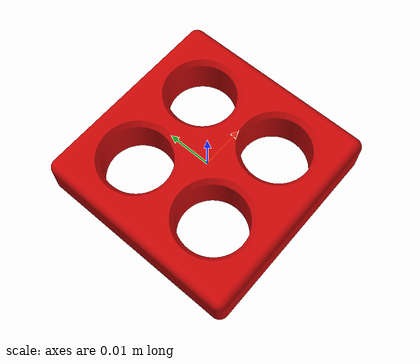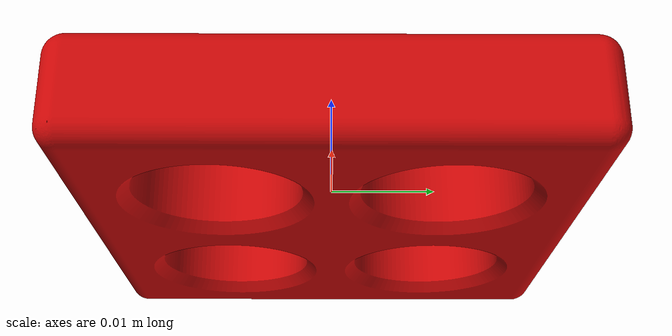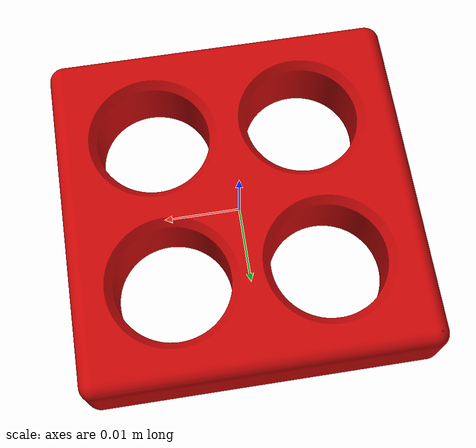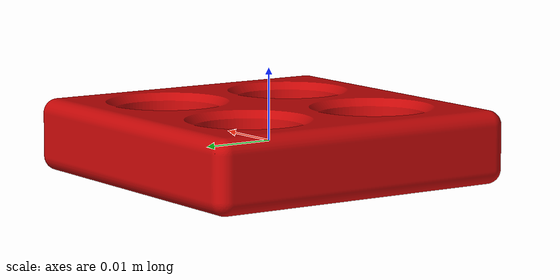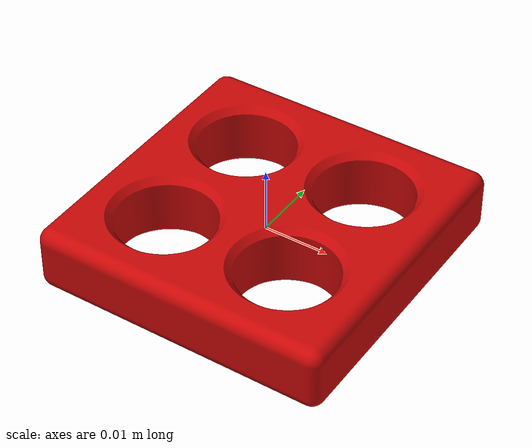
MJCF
<mujoco model="toy_five_insertion_four">
  <default>
    <default class="toy_four_visual">
      <geom group="2" type="mesh" contype="0" conaffinity="0"/>
    </default>
    <default class="toy_four_collision">
      <geom group="3" type="mesh"/>
    </default>
  </default>
  <asset>
    <material name="material_0" specular="0.5" shininess="0.5" rgba="0.791298 0.02732062 0.02732062 1"/>
    <mesh file="toy_five_insertion_four.obj"/>
    <mesh file="toy_five_insertion_four_collision_0.obj"/>
    <mesh file="toy_five_insertion_four_collision_1.obj"/>
    <mesh file="toy_five_insertion_four_collision_2.obj"/>
    <mesh file="toy_five_insertion_four_collision_3.obj"/>
    <mesh file="toy_five_insertion_four_collision_4.obj"/>
    <mesh file="toy_five_insertion_four_collision_5.obj"/>
    <mesh file="toy_five_insertion_four_collision_6.obj"/>
    <mesh file="toy_five_insertion_four_collision_7.obj"/>
    <mesh file="toy_five_insertion_four_collision_8.obj"/>
    <mesh file="toy_five_insertion_four_collision_9.obj"/>
    <mesh file="toy_five_insertion_four_collision_10.obj"/>
    <mesh file="toy_five_insertion_four_collision_11.obj"/>
    <mesh file="toy_five_insertion_four_collision_12.obj"/>
    <mesh file="toy_five_insertion_four_collision_13.obj"/>
    <mesh file="toy_five_insertion_four_collision_14.obj"/>
    <mesh file="toy_five_insertion_four_collision_15.obj"/>
    <mesh file="toy_five_insertion_four_collision_16.obj"/>
    <mesh file="toy_five_insertion_four_collision_17.obj"/>
    <mesh file="toy_five_insertion_four_collision_18.obj"/>
    <mesh file="toy_five_insertion_four_collision_19.obj"/>
    <mesh file="toy_five_insertion_four_collision_20.obj"/>
    <mesh file="toy_five_insertion_four_collision_21.obj"/>
    <mesh file="toy_five_insertion_four_collision_22.obj"/>
    <mesh file="toy_five_insertion_four_collision_23.obj"/>
    <mesh file="toy_five_insertion_four_collision_24.obj"/>
    <mesh file="toy_five_insertion_four_collision_25.obj"/>
    <mesh file="toy_five_insertion_four_collision_26.obj"/>
    <mesh file="toy_five_insertion_four_collision_27.obj"/>
    <mesh file="toy_five_insertion_four_collision_28.obj"/>
    <mesh file="toy_five_insertion_four_collision_29.obj"/>
    <mesh file="toy_five_insertion_four_collision_30.obj"/>
    <mesh file="toy_five_insertion_four_collision_31.obj"/>
    <mesh file="toy_five_insertion_four_collision_32.obj"/>
    <mesh file="toy_five_insertion_four_collision_33.obj"/>
    <mesh file="toy_five_insertion_four_collision_34.obj"/>
    <mesh file="toy_five_insertion_four_collision_35.obj"/>
    <mesh file="toy_five_insertion_four_collision_36.obj"/>
    <mesh file="toy_five_insertion_four_collision_37.obj"/>
    <mesh file="toy_five_insertion_four_collision_38.obj"/>
    <mesh file="toy_five_insertion_four_collision_39.obj"/>
    <mesh file="toy_five_insertion_four_collision_40.obj"/>
    <mesh file="toy_five_insertion_four_collision_41.obj"/>
    <mesh file="toy_five_insertion_four_collision_42.obj"/>
    <mesh file="toy_five_insertion_four_collision_43.obj"/>
    <mesh file="toy_five_insertion_four_collision_44.obj"/>
    <mesh file="toy_five_insertion_four_collision_45.obj"/>
    <mesh file="toy_five_insertion_four_collision_46.obj"/>
    <mesh file="toy_five_insertion_four_collision_47.obj"/>
    <mesh file="toy_five_insertion_four_collision_48.obj"/>
    <mesh file="toy_five_insertion_four_collision_49.obj"/>
    <mesh file="toy_five_insertion_four_collision_50.obj"/>
    <mesh file="toy_five_insertion_four_collision_51.obj"/>
    <mesh file="toy_five_insertion_four_collision_52.obj"/>
    <mesh file="toy_five_insertion_four_collision_53.obj"/>
    <mesh file="toy_five_insertion_four_collision_54.obj"/>
    <mesh file="toy_five_insertion_four_collision_55.obj"/>
    <mesh file="toy_five_insertion_four_collision_56.obj"/>
    <mesh file="toy_five_insertion_four_collision_57.obj"/>
    <mesh file="toy_five_insertion_four_collision_58.obj"/>
    <mesh file="toy_five_insertion_four_collision_59.obj"/>
    <mesh file="toy_five_insertion_four_collision_60.obj"/>
    <mesh file="toy_five_insertion_four_collision_61.obj"/>
    <mesh file="toy_five_insertion_four_collision_62.obj"/>
    <mesh file="toy_five_insertion_four_collision_63.obj"/>
    <mesh file="toy_five_insertion_four_collision_64.obj"/>
    <mesh file="toy_five_insertion_four_collision_65.obj"/>
    <mesh file="toy_five_insertion_four_collision_66.obj"/>
    <mesh file="toy_five_insertion_four_collision_67.obj"/>
  </asset>
  <worldbody>
    <body name="toy_five_insertion_four">
      <freejoint/>
      <geom material="material_0" mesh="toy_five_insertion_four" class="toy_four_visual"/>
      <geom mesh="toy_five_insertion_four_collision_0" rgba="0.680867220347491 0.045625420193492694 0.6950127350755976 1" class="toy_four_collision"/>
      <geom mesh="toy_five_insertion_four_collision_1" rgba="0.8875533451947434 0.9283782565542974 0.6094797530822809 1" class="toy_four_collision"/>
      <geom mesh="toy_five_insertion_four_collision_2" rgba="0.7131332182909207 0.2323243541270611 0.35706297387464825 1" class="toy_four_collision"/>
      <geom mesh="toy_five_insertion_four_collision_3" rgba="0.31569621194322184 0.13854429591468853 0.8236208833771661 1" class="toy_four_collision"/>
      <geom mesh="toy_five_insertion_four_collision_4" rgba="0.5242423837737973 0.8562989266838945 0.49197379873839553 1" class="toy_four_collision"/>
      <geom mesh="toy_five_insertion_four_collision_5" rgba="0.12715574732519574 0.2932102138210617 0.5483674639694682 1" class="toy_four_collision"/>
      <geom mesh="toy_five_insertion_four_collision_6" rgba="0.514561888583507 0.350130499524522 0.9290086937374602 1" class="toy_four_collision"/>
      <geom mesh="toy_five_insertion_four_collision_7" rgba="0.8027687733142266 0.306760687738898 0.5764904408091734 1" class="toy_four_collision"/>
      <geom mesh="toy_five_insertion_four_collision_8" rgba="0.29304103634807543 0.7071153011323568 0.4125266485384612 1" class="toy_four_collision"/>
      <geom mesh="toy_five_insertion_four_collision_9" rgba="0.4303004158661361 0.8913137885294329 0.40708166179267435 1" class="toy_four_collision"/>
      <geom mesh="toy_five_insertion_four_collision_10" rgba="0.6932801080073803 0.5346032486458051 0.07988276134879846 1" class="toy_four_collision"/>
      <geom mesh="toy_five_insertion_four_collision_11" rgba="0.8511186926625357 0.8219970264246326 0.9797862001627388 1" class="toy_four_collision"/>
      <geom mesh="toy_five_insertion_four_collision_12" rgba="0.8685266432861168 0.09677809564623097 0.2124972405870338 1" class="toy_four_collision"/>
      <geom mesh="toy_five_insertion_four_collision_13" rgba="0.6423797824474529 0.19492078585525696 0.3806747672608487 1" class="toy_four_collision"/>
      <geom mesh="toy_five_insertion_four_collision_14" rgba="0.3100177353748421 0.6624223144300199 0.773761791207812 1" class="toy_four_collision"/>
      <geom mesh="toy_five_insertion_four_collision_15" rgba="0.29463861645620326 0.6589149960241673 0.21698428534444092 1" class="toy_four_collision"/>
      <geom mesh="toy_five_insertion_four_collision_16" rgba="0.20307563311029053 0.8633518237830308 0.775707467734623 1" class="toy_four_collision"/>
      <geom mesh="toy_five_insertion_four_collision_17" rgba="0.9450387095051189 0.3907202148142994 0.2581295246380072 1" class="toy_four_collision"/>
      <geom mesh="toy_five_insertion_four_collision_18" rgba="0.7430885610882769 0.2669586193136322 0.5557782613467684 1" class="toy_four_collision"/>
      <geom mesh="toy_five_insertion_four_collision_19" rgba="0.6794492118926451 0.7844884794209549 0.932996127075433 1" class="toy_four_collision"/>
      <geom mesh="toy_five_insertion_four_collision_20" rgba="0.24417959457542304 0.8637087426469096 0.5623539732102772 1" class="toy_four_collision"/>
      <geom mesh="toy_five_insertion_four_collision_21" rgba="0.9803078208573962 0.24837727219726757 0.7674362285098368 1" class="toy_four_collision"/>
      <geom mesh="toy_five_insertion_four_collision_22" rgba="0.598588151543056 0.09405174260489768 0.4036866280011824 1" class="toy_four_collision"/>
      <geom mesh="toy_five_insertion_four_collision_23" rgba="0.0033916809358151 0.5841620557256613 0.4292486238206059 1" class="toy_four_collision"/>
      <geom mesh="toy_five_insertion_four_collision_24" rgba="0.25468817237777996 0.6761568215418889 0.3887843022281743 1" class="toy_four_collision"/>
      <geom mesh="toy_five_insertion_four_collision_25" rgba="0.6276738194116782 0.8764219172372969 0.9644744963098077 1" class="toy_four_collision"/>
      <geom mesh="toy_five_insertion_four_collision_26" rgba="0.56030971454721 0.017935064458962535 0.822020430779787 1" class="toy_four_collision"/>
      <geom mesh="toy_five_insertion_four_collision_27" rgba="0.9659347833606482 0.9710476626378928 0.053859961407730195 1" class="toy_four_collision"/>
      <geom mesh="toy_five_insertion_four_collision_28" rgba="0.15860402206793744 0.4436655695820818 0.9073649695354253 1" class="toy_four_collision"/>
      <geom mesh="toy_five_insertion_four_collision_29" rgba="0.27192143854285966 0.5571417338261873 0.9807318905640755 1" class="toy_four_collision"/>
      <geom mesh="toy_five_insertion_four_collision_30" rgba="0.14875081291825432 0.945301071098183 0.18254102506210101 1" class="toy_four_collision"/>
      <geom mesh="toy_five_insertion_four_collision_31" rgba="0.03731091939084763 0.5194349229905815 0.6834479604924018 1" class="toy_four_collision"/>
      <geom mesh="toy_five_insertion_four_collision_32" rgba="0.8703869667484838 0.12153044670215829 0.09386227069754005 1" class="toy_four_collision"/>
      <geom mesh="toy_five_insertion_four_collision_33" rgba="0.2047986985957908 0.9263999335657999 0.572503572734969 1" class="toy_four_collision"/>
      <geom mesh="toy_five_insertion_four_collision_34" rgba="0.5691565593992749 0.9965045020856975 0.7029942415055946 1" class="toy_four_collision"/>
      <geom mesh="toy_five_insertion_four_collision_35" rgba="0.9912117770781982 0.9515507564296913 0.9133876871731916 1" class="toy_four_collision"/>
      <geom mesh="toy_five_insertion_four_collision_36" rgba="0.6552682058254448 0.8477764445094379 0.0373323024051031 1" class="toy_four_collision"/>
      <geom mesh="toy_five_insertion_four_collision_37" rgba="0.9219208323352711 0.8344872878165761 0.41330256320293957 1" class="toy_four_collision"/>
      <geom mesh="toy_five_insertion_four_collision_38" rgba="0.7922019725299722 0.8913282959215779 0.8584151822953204 1" class="toy_four_collision"/>
      <geom mesh="toy_five_insertion_four_collision_39" rgba="0.1695914209185666 0.13421917752703638 0.8112576188423712 1" class="toy_four_collision"/>
      <geom mesh="toy_five_insertion_four_collision_40" rgba="0.2273583814176683 0.9579383618945407 0.29445827708007366 1" class="toy_four_collision"/>
      <geom mesh="toy_five_insertion_four_collision_41" rgba="0.9923672158182616 0.04640575572129624 0.8708756735441867 1" class="toy_four_collision"/>
      <geom mesh="toy_five_insertion_four_collision_42" rgba="0.7594135863019225 0.608022153736497 0.48314374446332076 1" class="toy_four_collision"/>
      <geom mesh="toy_five_insertion_four_collision_43" rgba="0.9097730798704177 0.7582353770796051 0.7132316256106062 1" class="toy_four_collision"/>
      <geom mesh="toy_five_insertion_four_collision_44" rgba="0.16244875905548184 0.5241557044227135 0.9518920447805872 1" class="toy_four_collision"/>
      <geom mesh="toy_five_insertion_four_collision_45" rgba="0.6201910193795457 0.10078561371186501 0.03285741886298632 1" class="toy_four_collision"/>
      <geom mesh="toy_five_insertion_four_collision_46" rgba="0.47226134992705127 0.8220509029626699 0.32500371204557854 1" class="toy_four_collision"/>
      <geom mesh="toy_five_insertion_four_collision_47" rgba="0.19330626984128063 0.9140363393871569 0.38968674131378134 1" class="toy_four_collision"/>
      <geom mesh="toy_five_insertion_four_collision_48" rgba="0.9158222837387804 0.9377912892879627 0.4344146777108423 1" class="toy_four_collision"/>
      <geom mesh="toy_five_insertion_four_collision_49" rgba="0.6557580661609101 0.3879322639913222 0.17524302562682426 1" class="toy_four_collision"/>
      <geom mesh="toy_five_insertion_four_collision_50" rgba="0.3361669016193076 0.034161514235449 0.5164741088236117 1" class="toy_four_collision"/>
      <geom mesh="toy_five_insertion_four_collision_51" rgba="0.761383600301385 0.2930864145061003 0.19736268500717935 1" class="toy_four_collision"/>
      <geom mesh="toy_five_insertion_four_collision_52" rgba="0.019227617771753525 0.5470226950618017 0.4608170800028515 1" class="toy_four_collision"/>
      <geom mesh="toy_five_insertion_four_collision_53" rgba="0.7550012098323127 0.8319657870290057 0.4430007817038423 1" class="toy_four_collision"/>
      <geom mesh="toy_five_insertion_four_collision_54" rgba="0.3952107910242876 0.12338103134857059 0.5624493738897778 1" class="toy_four_collision"/>
      <geom mesh="toy_five_insertion_four_collision_55" rgba="0.9153825724331129 0.18337739029189848 0.5952661959785902 1" class="toy_four_collision"/>
      <geom mesh="toy_five_insertion_four_collision_56" rgba="0.2169151121662416 0.4815056526830359 0.3318989651185008 1" class="toy_four_collision"/>
      <geom mesh="toy_five_insertion_four_collision_57" rgba="0.6614744796777725 0.1649403092920786 0.6660347058587163 1" class="toy_four_collision"/>
      <geom mesh="toy_five_insertion_four_collision_58" rgba="0.1464949071763446 0.2985998148485799 0.9841732579745958 1" class="toy_four_collision"/>
      <geom mesh="toy_five_insertion_four_collision_59" rgba="0.5180291100894161 0.7971707316437141 0.9118912239858177 1" class="toy_four_collision"/>
      <geom mesh="toy_five_insertion_four_collision_60" rgba="0.17572306499592916 0.5608955781092132 0.23905904415693247 1" class="toy_four_collision"/>
      <geom mesh="toy_five_insertion_four_collision_61" rgba="0.21338705006556558 0.7546909405967472 0.46454267263839677 1" class="toy_four_collision"/>
      <geom mesh="toy_five_insertion_four_collision_62" rgba="0.8799432606536007 0.5166732541819694 0.2161281017517891 1" class="toy_four_collision"/>
      <geom mesh="toy_five_insertion_four_collision_63" rgba="0.554326769513614 0.23452257535656273 0.3982789521731894 1" class="toy_four_collision"/>
      <geom mesh="toy_five_insertion_four_collision_64" rgba="0.9377861654755507 0.10186499976189867 0.7151711806306816 1" class="toy_four_collision"/>
      <geom mesh="toy_five_insertion_four_collision_65" rgba="0.4100207395695774 0.008043867243935132 0.004245056421779858 1" class="toy_four_collision"/>
      <geom mesh="toy_five_insertion_four_collision_66" rgba="0.5001515289416779 0.7987800239173926 0.8825839060536731 1" class="toy_four_collision"/>
      <geom mesh="toy_five_insertion_four_collision_67" rgba="0.4992979450832917 0.4340436510593846 0.3176907576676564 1" class="toy_four_collision"/>
    </body>
  </worldbody>
</mujoco>
